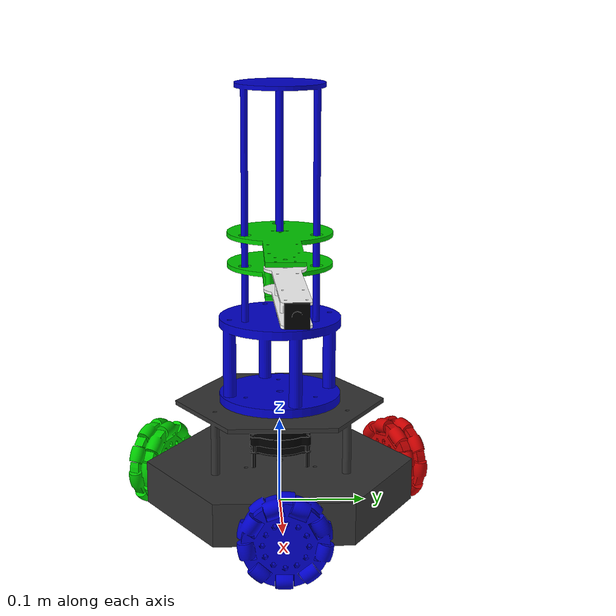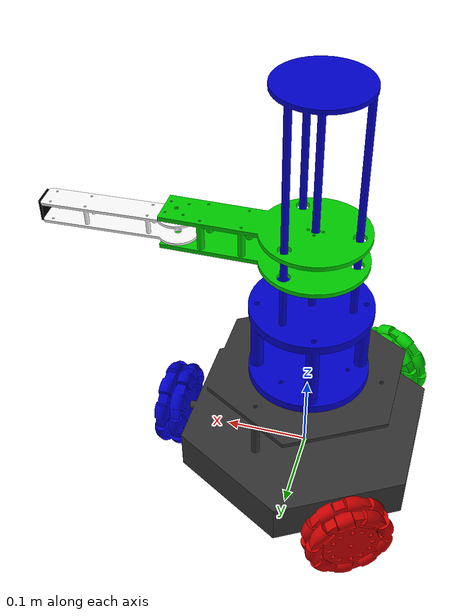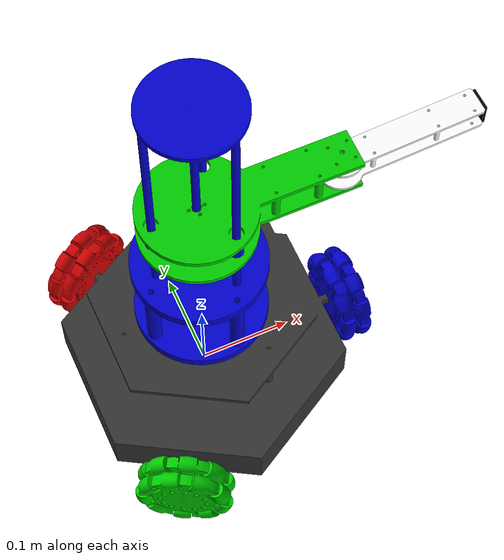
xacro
<?xml version="1.0"?>
<robot xmlns:xacro="http://www.ros.org/wiki/xacro" name="My_robot">

<!-- =========== Model include =========-->
<xacro:include filename="$(find My_robot)/xacro/model/base/base.xacro"/>
<xacro:include filename="$(find My_robot)/xacro/model/wheel/wheel.xacro"/>
<xacro:include filename="$(find My_robot)/xacro/model/arm/arm.xacro"/>
<xacro:include filename="$(find My_robot)/xacro/model/sensor/camera.xacro"/>
<xacro:include filename="$(find My_robot)/xacro/model/sensor/lidar.xacro"/>
<xacro:include filename="$(find My_robot)/xacro/model/sensor/odom.xacro"/>

<!-- ========= Gazebo include================== -->
<xacro:include filename="$(find My_robot)/xacro/gazebo/arm/gazebo_arm.xacro"/>
<xacro:include filename="$(find My_robot)/xacro/gazebo/base/gazebo_base.xacro"/>
<xacro:include filename="$(find My_robot)/xacro/gazebo/sensor/gazebo_camera.xacro"/>
<xacro:include filename="$(find My_robot)/xacro/gazebo/sensor/gazebo_lidar.xacro"/>
<xacro:include filename="$(find My_robot)/xacro/gazebo/sensor/gazebo_odom.xacro"/>
<xacro:include filename="$(find My_robot)/xacro/gazebo/wheel/gazebo_wheel.xacro"/>
<xacro:include filename="$(find My_robot)/xacro/gazebo/plugin/plugin.xacro"/>
<xacro:include filename="$(find My_robot)/xacro/gazebo/transmission/my_robot_transmission.xacro"/>

<!-- ======= Model ===================  -->
<xacro:base/>
<xacro:wheel/>
<xacro:arm/>
<xacro:camera/>
<xacro:lidar/>
<xacro:odom/>

<!-- ============= gazebo ==========-->
<xacro:gazebo_base/>
<xacro:gazebo_arm/>
<xacro:gazebo_camera/>
<xacro:gazebo_wheel/>
<xacro:gazebo_lidar/>
<xacro:gazebo_odom/>
<xacro:gazebo_plugin/>
<xacro:transmission/>
</robot>

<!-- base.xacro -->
<robot xmlns:xacro="http://www.ros.org/wiki/xacro">
    <xacro:macro name="base">
        <link name="base_link">
            <inertial>
                <origin xyz="3.90879417278001E-07 1.11577413974828E-14 0.0439890655400512" rpy="0 0 0" />
                <mass value="1.04484151447671" />
                <inertia ixx="0.00585605726577215" ixy="-2.73721501945711E-18" ixz="-6.76359904158392E-19" iyy="0.0058560534010825" iyz="-3.56355978001737E-19" izz="0.0114863693933343" />
            </inertial>
            <visual>
                <origin xyz="0 0 0" rpy="0 0 0" />
                <geometry>
                    <mesh filename="package://My_robot/meshes/base_link.STL" />
                </geometry>
                <material name="grey">
                    <color rgba="0.2 0.2 0.2 1.0"/>
                </material>
            </visual>
            <collision>
                <origin xyz="0 0 0" rpy="0 0 0" />
                <geometry>
                    <mesh filename="package://My_robot/meshes/base_link.STL" />
                </geometry>
            </collision>
        </link>
    </xacro:macro>
</robot>

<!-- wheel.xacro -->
<robot xmlns:xacro="http://www.ros.org/wiki/xacro">
    <xacro:macro name="wheel">
        <!-- font -->
        <link name="font_wheel_Link">
            <inertial>
                <origin xyz="-1.3878E-16 -1.8874E-15 -0.015" rpy="0 0 0" />
                <mass value="0.20892" />
                <inertia ixx="4.9248E-05" ixy="4.8731E-20" ixz="9.4402E-22" iyy="4.9248E-05" iyz="-1.1487E-20" izz="9.2317E-05" />
            </inertial>
            <visual>
                <origin xyz="0 0 0" rpy="0 0 0" />
                <geometry>
                    <mesh filename="package://My_robot/meshes/font_wheel_Link.STL" />
                </geometry>
                <material name="blue">
                    <color rgba="0.0 0.0 0.8 1.0"/>
                </material>
            </visual>
            <collision>
                <origin xyz="0 0 0" rpy="0 0 0" />
                <geometry>
                    <mesh filename="package://My_robot/meshes/font_wheel_Link.STL" />
                </geometry>
            </collision>
        </link>
        <joint name="font_wheel_joint" type="continuous">
            <origin xyz="0.1799 0 0.02" rpy="1.5708 0 1.5708" />
            <parent link="base_link" />
            <child link="font_wheel_Link" />
            <axis xyz="0 0 -1" />
        </joint>
        <!-- right -->
        <link name="right_wheel_Link">
            <inertial>
                <origin xyz="2.2149E-14 2.0151E-14 -0.015" rpy="0 0 0" />
                <mass value="0.20892" />
                <inertia ixx="4.9248E-05" ixy="-1.0094E-20" ixz="2.3717E-20" iyy="4.9248E-05" iyz="-2.4658E-20" izz="9.2317E-05" />
            </inertial>
            <visual>
                <origin xyz="0 0 0" rpy="0 0 0" />
                <geometry>
                    <mesh filename="package://My_robot/meshes/right_wheel_Link.STL" />
                </geometry>
                <material name="green">
                    <color rgba="0.0 0.8 0.0 1.0"/>
                </material>
            </visual>
            <collision>
                <origin xyz="0 0 0" rpy="0 0 0" />
                <geometry>
                    <mesh filename="package://My_robot/meshes/right_wheel_Link.STL" />
                </geometry>
            </collision>
        </link>
        <joint name="right_wheel_joint" type="continuous">
            <origin xyz="-0.089952 -0.1558 0.02" rpy="1.5708 0 -0.5236" />
            <parent link="base_link" />
            <child link="right_wheel_Link" />
            <axis xyz="0 0 -1" />
        </joint>
        <!-- left -->
        <link name="left_wheel_Link">
            <inertial>
                <origin xyz="9.99200722162641E-16 1.66533453693773E-15 -0.0149999999999999" rpy="0 0 0" />
                <mass value="0.208921365228656" />
                <inertia ixx="4.92480864989309E-05" ixy="1.76501550538467E-20" ixz="-3.3881317890172E-21" iyy="4.92480864989306E-05" iyz="1.02418066947516E-20" izz="9.23169288151233E-05" />
            </inertial>
            <visual>
                <origin xyz="0 0 0" rpy="0 0 0" />
                <geometry>
                    <mesh filename="package://My_robot/meshes/left_wheel_Link.STL" />
                </geometry>
                <material name="red">
                    <color rgba="0.8 0.0 0.0 1.0"/>
                </material>
            </visual>
            <collision>
                <origin xyz="0 0 0" rpy="0 0 0" />
                <geometry>
                    <mesh filename="package://My_robot/meshes/left_wheel_Link.STL" />
                </geometry>
            </collision>
        </link>
        <joint name="left_wheel_joint" type="continuous">
            <origin xyz="-0.089952 0.1558 0.02" rpy="1.5708 0 -2.618" />
            <parent link="base_link" />
            <child link="left_wheel_Link" />
            <axis xyz="0 0 -1" />
        </joint>
    </xacro:macro>
</robot>

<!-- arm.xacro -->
<robot xmlns:xacro="http://www.ros.org/wiki/xacro">
    <xacro:macro name="arm">
        <link name="arm_Link">
            <inertial>
                <origin xyz="-1.1102E-16 -1.1102E-16 0.089524" rpy="0 0 0" />
                <mass value="0.44715" />
                <inertia ixx="0.00073659" ixy="8.6223E-20" ixz="-1.3961E-22" iyy="0.00073659" iyz="6.0765E-22" izz="0.00079837" />
            </inertial>
            <visual>
                <origin xyz="0 0 0" rpy="0 0 0" />
                <geometry>
                    <mesh filename="package://My_robot/meshes/arm_Link.STL" />
                </geometry>
                <material name="blue">
                    <color rgba="0.0 0.0 0.8 1.0"/>
                </material>
            </visual>
            <collision>
                <origin xyz="0 0 0" rpy="0 0 0" />
                <geometry>
                    <mesh filename="package://My_robot/meshes/arm_Link.STL" />
                </geometry>
            </collision>
        </link>
        <joint name="arm_joint" type="fixed">
            <origin xyz="0 0 0.135" rpy="0 0 0" />
            <parent link="base_link" />
            <child link="arm_Link" />
            <axis xyz="0 0 0" />
        </joint>
        <link name="arm1_Link">
            <inertial>
                <origin xyz="0.0346617299457402 1.02695629777827E-15 0.0149736149476148" rpy="0 0 0" />
                <mass value="0.155903532832756" />
                <inertia ixx="0.000103298611136068" ixy="1.53504463235121E-18" ixz="6.95815988584628E-09" iyy="0.000525260211617603" iyz="-3.72382769845771E-23" izz="0.000627153239789967" />
            </inertial>
            <visual>
                <origin xyz="0 0 0" rpy="0 0 0" />
                <geometry>
                    <mesh filename="package://My_robot/meshes/arm1_Link.STL" />
                </geometry>
                <material name="green">
                    <color rgba="0.0 0.8 0.0 1.0"/>
                </material>
            </visual>
            <collision>
                <origin xyz="0 0 0" rpy="0 0 0" />
                <geometry>
                    <mesh filename="package://My_robot/meshes/arm1_Link.STL" />
                </geometry>
            </collision>
        </link>
        <joint name="arm1_joint" type="prismatic">
            <origin xyz="0 0 0.15396" rpy="0 0 0" />
            <parent link="arm_Link" />
            <child link="arm1_Link" />
            <axis xyz="0 0 1" />
            <limit lower="0" upper="0.1" effort="2" velocity="2" />
            <dynamics friction="0.01" />
        </joint>
        <link name="arm2_Link">
            <inertial>
                <origin xyz="0.060877 0.0021211 0.0095" rpy="0 0 0" />
                <mass value="0.033192" />
                <inertia ixx="3.0913E-06" ixy="-2.7135E-06" ixz="3.3629E-22" iyy="8.0876E-05" iyz="1.4466E-23" izz="8.3862E-05" />
            </inertial>
            <visual>
                <origin xyz="0 0 0" rpy="0 0 0" />
                <geometry>
                    <mesh filename="package://My_robot/meshes/arm2_Link.STL" />
                </geometry>
                <material name="white">
                    <color rgba="1.0 1.0 1.0 1.0"/>
                </material>
            </visual>
            <collision>
                <origin xyz="0 0 0" rpy="0 0 0" />
                <geometry>
                    <mesh filename="package://My_robot/meshes/arm2_Link.STL" />
                </geometry>
            </collision>
        </link>
        <joint name="arm2_joint" type="revolute">
            <origin xyz="0.15062 0 0.005" rpy="0 0 0" />
            <parent link="arm1_Link" />
            <child link="arm2_Link" />
            <axis xyz="0 0 1" />
            <limit lower="-1" upper="1" effort="2" velocity="2" />
            <dynamics friction="0.01" />
        </joint>
    </xacro:macro>
</robot>

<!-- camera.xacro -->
<robot xmlns:xacro="http://www.ros.org/wiki/xacro">
    <xacro:macro name="camera">
        <link name="camera_Link">
            <inertial>
                <origin xyz="0 0 -0.00329934435209411" rpy="0 0 0" />
                <mass value="0.00195707963267948" />
                <inertia ixx="9.70370579973821E-08" ixy="1.30119467975669E-23" ixz="-2.64697796016969E-23" iyy="8.96870579973829E-08" iyz="6.70724807977344E-25" izz="1.82113495408492E-07" />
            </inertial>
            <visual>
                <origin xyz="0 0 0" rpy="0 0 0" />
                <geometry>
                    <mesh filename="package://My_robot/meshes/camera_Link.STL" />
                </geometry>
                <material name="black">
                    <color rgba="0.0 0.0 0.0 1.0"/>
                </material>
            </visual>
            <collision>
                <origin xyz="0 0 0" rpy="0 0 0" />
                <geometry>
                    <mesh filename="package://My_robot/meshes/camera_Link.STL" />
                </geometry>
            </collision>
        </link>
        <joint name="camera_joint" type="fixed">
            <origin xyz="0.154906002898303 0.00539724615623074 0.00950000000000017" rpy="-1.5707963267949 0 -1.53596834328829" />
            <parent link="arm2_Link" />
            <child link="camera_Link" />
            <axis xyz="0 0 0" />
        </joint>
    </xacro:macro>
</robot>

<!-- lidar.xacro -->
<robot xmlns:xacro="http://www.ros.org/wiki/xacro">
    <xacro:macro name="lidar">
        <link name="lidar_Link">
    <inertial>
      <origin xyz="-0.00829409957033955 7.82707232360735E-14 -0.00854885777715414" rpy="0 0 0" />
      <mass value="0.146695752131392" />
      <inertia ixx="6.22721120792819E-05" ixy="1.71640368936764E-19" ixz="-1.88658076337422E-05" iyy="0.000109673997590949" iyz="-1.60699862691652E-19" izz="0.000125682524275729" />
    </inertial>
    <visual>
      <origin xyz="0 0 0" rpy="0 0 0" />
      <geometry>
        <mesh filename="package://My_robot/meshes/lidar_Link.STL" />
      </geometry>
       <material name="black">
    <color rgba="0.0 0.0 0.0 1.0"/>
  </material>
    </visual>
    <collision>
      <origin xyz="0 0 0" rpy="0 0 0" />
      <geometry>
        <mesh filename="package://My_robot/meshes/lidar_Link.STL" />
      </geometry>
    </collision>
  </link>
  <joint name="lidar_joint" type="fixed">
    <origin xyz="0 0 0.0962499999999427" rpy="0 0 0" />
    <parent link="base_link" />
    <child link="lidar_Link" />
    <axis xyz="0 0 0" />
  </joint>
    </xacro:macro>
</robot>

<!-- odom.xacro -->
<robot xmlns:xacro="http://www.ros.org/wiki/xacro">
    <xacro:macro name="odom">
        <!-- font -->
        <link name="font_odom_Link">
            <inertial>
                <origin xyz="0 0 0.015066" rpy="0 0 0" />
                <mass value="0.0090385" />
                <inertia ixx="8.5308E-07" ixy="-1.1305E-23" ixz="2.2448E-22" iyy="9.8433E-07" iyz="2.5042E-23" izz="4.6899E-07" />
            </inertial>
            <visual>
                <origin xyz="0 0 0" rpy="0 0 0" />
                <geometry>
                    <mesh filename="package://My_robot/meshes/font_odom_Link.STL" />
                </geometry>
                <material name="white">
                    <color rgba="1.0 1.0 1.0 1.0"/>
                </material>
            </visual>
            <collision>
                <origin xyz="0 0 0" rpy="0 0 0" />
                <geometry>
                    <mesh filename="package://My_robot/meshes/font_odom_Link.STL" />
                </geometry>
            </collision>
        </link>
        <joint name="font_odom_joint" type="fixed">
            <origin xyz="0 0 -0.081" rpy="0 0 -3.14159265358979" />
            <parent link="font_wheel_Link" />
            <child link="font_odom_Link" />
            <axis xyz="0 0 0" />
        </joint>
        <!-- right -->
        <link name="right_odom_Link">
            <inertial>
                <origin xyz="-1.11022302462516E-16 5.55111512312578E-17 0.0150659966728316" rpy="0 0 0" />
                <mass value="0.00903848451000651" />
                <inertia ixx="8.53077601714409E-07" ixy="9.20118597973462E-23" ixz="1.12496563307212E-21" iyy="9.8432760171441E-07" iyz="-1.69440086344285E-22" izz="4.68985717623792E-07" />
            </inertial>
            <visual>
                <origin xyz="0 0 0" rpy="0 0 0" />
                <geometry>
                    <mesh filename="package://My_robot/meshes/right_odom_Link.STL" />
                </geometry>
                <material name="white">
                    <color rgba="1.0 1.0 1.0 1.0"/>
                </material>
            </visual>
            <collision>
                <origin xyz="0 0 0" rpy="0 0 0" />
                <geometry>
                    <mesh filename="package://My_robot/meshes/right_odom_Link.STL" />
                </geometry>
            </collision>
        </link>
        <joint name="right_odom_joint" type="fixed">
            <origin xyz="0 0 -0.0810000000000007" rpy="0 0 0" />
            <parent link="right_wheel_Link" />
            <child link="right_odom_Link" />
            <axis xyz="-0.866025403784442 0 0.499999999999994" />
        </joint>
        <!-- left -->
        <link name="left_odom_Link">
            <inertial>
                <origin xyz="0 0 0.015066" rpy="0 0 0" />
                <mass value="0.0090385" />
                <inertia ixx="8.5308E-07" ixy="-4.8937E-23" ixz="-4.3675E-22" iyy="9.8433E-07" iyz="-7.4973E-23" izz="4.6899E-07" />
            </inertial>
            <visual>
                <origin xyz="0 0 0" rpy="0 0 0" />
                <geometry>
                    <mesh filename="package://My_robot/meshes/left_odom_Link.STL" />
                </geometry>
                <material name="white">
                    <color rgba="1.0 1.0 1.0 1.0"/>
                </material>
            </visual>
            <collision>
                <origin xyz="0 0 0" rpy="0 0 0" />
                <geometry>
                    <mesh filename="package://My_robot/meshes/left_odom_Link.STL" />
                </geometry>
            </collision>
        </link>
        <joint name="left_odom_joint" type="fixed">
            <origin xyz="0 0 -0.0809999999999999" rpy="0 0 0" />
            <parent link="left_wheel_Link" />
            <child link="left_odom_Link" />
            <axis xyz="0 0 0" />
        </joint>
    </xacro:macro>
</robot>
